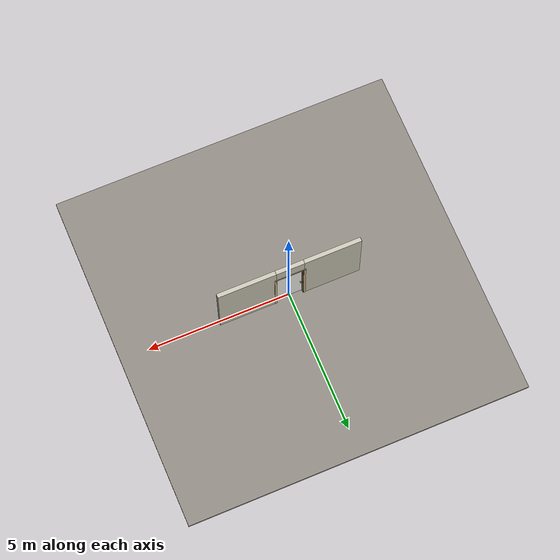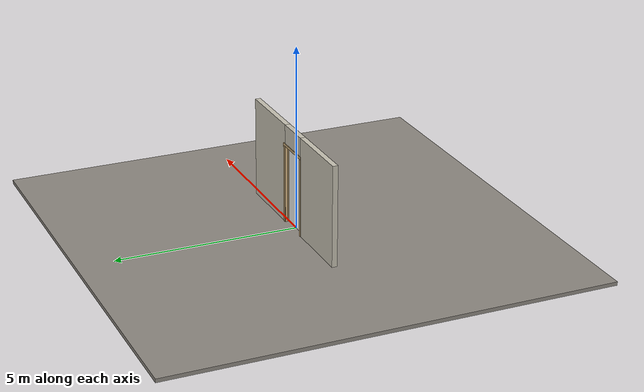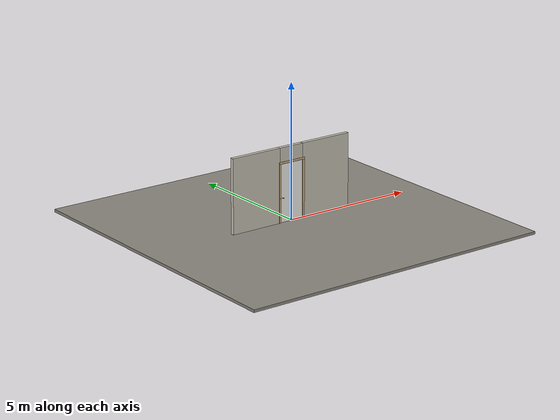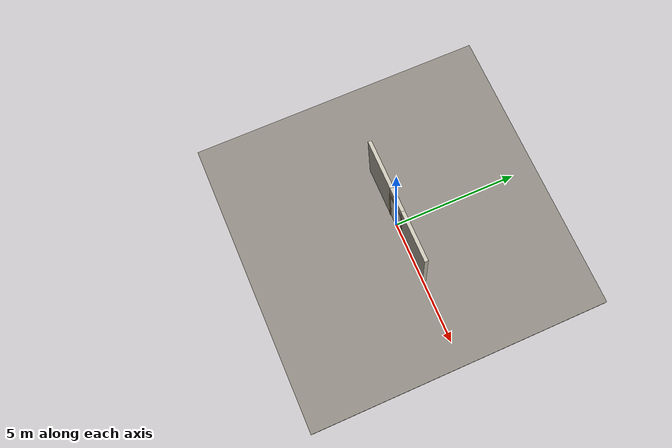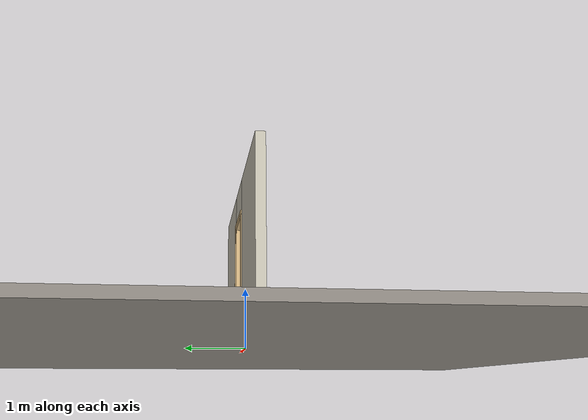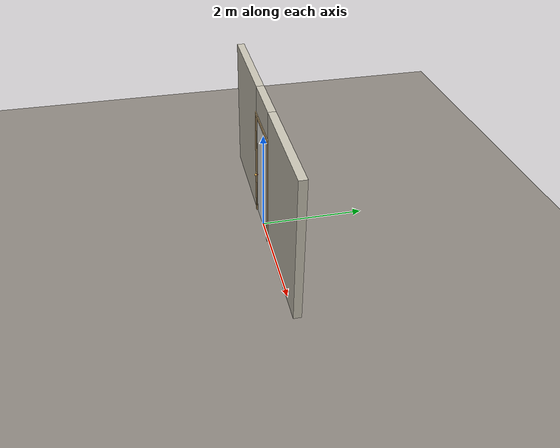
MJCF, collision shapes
<?xml version="1.0" ?>
<mujoco model="db0940_swing_single_full">
  <compiler angle="radian" meshdir="../../hardware" texturedir="../../textures" autolimits="true" inertiafromgeom="false"/>
  <option timestep="0.002" integrator="implicitfast" cone="elliptic" impratio="10" noslip_iterations="3">
    <flag multiccd="enable"/>
  </option>
  <size memory="16M"/>
  <default>
    <geom condim="4" solref="0.005 1" solimp="0.95 0.99 0.001"/>
    <joint solreflimit="0.005 1" solimplimit="0.95 0.99 0.001"/>
    <tendon solreflimit="0.005 1"/>
    <equality solref="0.002 1"/>
  </default>
  <visual>
    <headlight ambient="0.4 0.4 0.4" diffuse="0.7 0.7 0.7" specular="0.2 0.2 0.2"/>
    <quality shadowsize="4096"/>
    <map znear="0.01" zfar="60"/>
  </visual>
  <asset>
    <mesh name="hinge_e3fd49fe13" file="hinge_e3fd49fe13.obj"/>
    <mesh name="hinge_jamb_e47eb19c39" file="hinge_jamb_e47eb19c39.obj"/>
    <mesh name="knob_d1888f6f03" file="knob_d1888f6f03.obj"/>
    <material name="mat_floor" rgba="0.55 0.53 0.5 1" specular="0.2" shininess="0.15" reflectance="0"/>
    <material name="mat_wall" rgba="0.78 0.76 0.7 1" specular="0.2" shininess="0.1" reflectance="0"/>
    <material name="mat_leaf" rgba="0.93 0.93 0.91 1" specular="0.2" shininess="0.43" reflectance="0"/>
    <material name="mat_leaf_louver" rgba="0.79 0.79 0.773 1" specular="0.2" shininess="0.4" reflectance="0"/>
    <material name="mat_hinge" rgba="0.65 0.66 0.68 1" specular="0.74" shininess="0.5" reflectance="0.36"/>
    <material name="mat_op_brass" rgba="0.85 0.66 0.3 1" specular="0.8" shininess="0.75" reflectance="0.4"/>
    <material name="mat_trim" rgba="0.85 0.66 0.3 1" specular="0.8" shininess="0.75" reflectance="0.4"/>
    <material name="mat_bolt" rgba="0.85 0.66 0.3 1" specular="0.8" shininess="0.75" reflectance="0.4"/>
    <material name="mat_frame" rgba="0.82 0.7 0.5 1" specular="0.2" shininess="0.45" reflectance="0"/>
    <texture name="skybox" type="skybox" builtin="gradient" rgb1="0.6 0.7 0.85" rgb2="0.9 0.92 0.95" width="256" height="256"/>
  </asset>
  <worldbody>
    <light name="sun" pos="1.5 -2.5 4" dir="-0.3 0.5 -0.8" directional="true" diffuse="0.8 0.8 0.8" specular="0.3 0.3 0.3" castshadow="true"/>
    <light name="fill" pos="-1.5 2.5 3" dir="0.3 -0.5 -0.7" directional="true" diffuse="0.35 0.35 0.4" castshadow="false"/>
    <camera name="robot_view" pos="0 -2.589812 1.812087" xyaxes="1 0 0 0 0.26963 0.962964" fovy="52"/>
    <camera name="far_view" pos="0 2.685812 1.812087" xyaxes="-1 0 0 0 -0.26963 0.962964" fovy="52"/>
    <camera name="iso" pos="-2.004737 -2.167762 2.234138" xyaxes="0.741536 -0.670913 0 0.242917 0.268487 0.932151" fovy="46"/>
    <camera name="detail_handle" pos="-0.2165 -0.864 1.194" xyaxes="0.97561 0.219512 0 -0.070934 0.315262 0.94635" fovy="38"/>
    <geom name="floor" type="box" size="6 6 0.05" pos="0 0 -0.05" material="mat_floor" group="0" contype="1" conaffinity="1" friction="0.8 0.005 0.0001" density="2400"/>
    <geom name="wall_left" type="box" size="0.99525 0.0725 1.3735" pos="-1.50475 0.048 1.3735" material="mat_wall" group="0" contype="1" conaffinity="1" friction="0.6 0.005 0.0001" density="800"/>
    <geom name="wall_right" type="box" size="1.01025 0.0725 1.3735" pos="1.48975 0.048 1.3735" material="mat_wall" group="0" contype="1" conaffinity="1" friction="0.6 0.005 0.0001" density="800"/>
    <geom name="wall_header" type="box" size="0.4945 0.0725 0.2755" pos="-0.015 0.048 2.4715" material="mat_wall" group="0" contype="1" conaffinity="1" friction="0.6 0.005 0.0001" density="800"/>
    <geom name="hinge_0_jamb" type="mesh" mesh="hinge_jamb_e47eb19c39" pos="0.4575 -0.0245 0.259" quat="0 0 1 0" material="mat_hinge" group="1" contype="0" conaffinity="0" density="7850"/>
    <geom name="hinge_1_jamb" type="mesh" mesh="hinge_jamb_e47eb19c39" pos="0.4575 -0.0245 1.076" quat="0 0 1 0" material="mat_hinge" group="1" contype="0" conaffinity="0" density="7850"/>
    <geom name="hinge_2_jamb" type="mesh" mesh="hinge_jamb_e47eb19c39" pos="0.4575 -0.0245 1.963" quat="0 0 1 0" material="mat_hinge" group="1" contype="0" conaffinity="0" density="7850"/>
    <geom name="jamb_hinge" type="box" size="0.0095 0.0725 1.0735" pos="0.47 0.048 1.0735" material="mat_frame" group="0" contype="1" conaffinity="1" friction="0.6 0.005 0.0001" density="400"/>
    <geom name="strike_914_wall_n" type="box" size="0.0245 0.056325 0.0167" pos="-0.485 0.064175 0.914" material="mat_frame" group="0" contype="1" conaffinity="1" friction="0.6 0.005 0.0001" density="400"/>
    <geom name="strike_914_wall_p" type="box" size="0.0245 0.008 0.0167" pos="-0.485 -0.01585 0.914" material="mat_frame" group="0" contype="1" conaffinity="1" friction="0.6 0.005 0.0001" density="400"/>
    <geom name="strike_914_ramp" type="box" size="0.0245 0.01649 0.0167" pos="-0.489636 -0.028673 0.914" quat="0.977148 0 0 -0.212558" material="mat_frame" group="0" contype="1" conaffinity="1" friction="0.12 0.005 0.0001" density="400"/>
    <geom name="strike_914_back" type="box" size="0.01615 0.00785 0.0167" pos="-0.49335 0 0.914" material="mat_frame" group="0" contype="1" conaffinity="1" friction="0.6 0.005 0.0001" density="400"/>
    <geom name="jamb_strike_0" type="box" size="0.0245 0.0725 0.44865" pos="-0.485 0.048 0.44865" material="mat_frame" group="0" contype="1" conaffinity="1" friction="0.6 0.005 0.0001" density="400"/>
    <geom name="jamb_strike_1" type="box" size="0.0245 0.0725 0.60815" pos="-0.485 0.048 1.53885" material="mat_frame" group="0" contype="1" conaffinity="1" friction="0.6 0.005 0.0001" density="400"/>
    <geom name="jamb_head" type="box" size="0.4945 0.0725 0.0095" pos="-0.015 0.048 2.1565" material="mat_frame" group="0" contype="1" conaffinity="1" friction="0.6 0.005 0.0001" density="400"/>
    <geom name="head_stud" type="box" size="0.4945 0.0725 0.015" pos="-0.015 0.048 2.181" material="mat_wall" group="0" contype="1" conaffinity="1" friction="0.6 0.005 0.0001" density="500"/>
    <geom name="stop_hinge" type="box" size="0.0055 0.016 1.0735" pos="0.455 0.034 1.0735" material="mat_frame" group="0" contype="1" conaffinity="1" friction="0.6 0.005 0.0001" density="400"/>
    <geom name="stop_strike" type="box" size="0.0055 0.016 1.0735" pos="-0.455 0.034 1.0735" material="mat_frame" group="0" contype="1" conaffinity="1" friction="0.6 0.005 0.0001" density="400"/>
    <geom name="stop_head" type="box" size="0.4605 0.016 0.0055" pos="0 0.034 2.1415" material="mat_frame" group="0" contype="1" conaffinity="1" friction="0.6 0.005 0.0001" density="400"/>
    <geom name="casing_l_n" type="box" size="0.035 0.008 1.083" pos="-0.5095 -0.0325 1.0735" material="mat_frame" group="2" contype="0" conaffinity="0" density="400"/>
    <geom name="casing_r_n" type="box" size="0.035 0.008 1.083" pos="0.5095 -0.0325 1.0735" material="mat_frame" group="2" contype="0" conaffinity="0" density="400"/>
    <geom name="casing_h_n" type="box" size="0.5445 0.008 0.035" pos="0 -0.0325 2.196" material="mat_frame" group="2" contype="0" conaffinity="0" density="400"/>
    <geom name="casing_l_p" type="box" size="0.035 0.008 1.083" pos="-0.5095 0.1285 1.0735" material="mat_frame" group="2" contype="0" conaffinity="0" density="400"/>
    <geom name="casing_r_p" type="box" size="0.035 0.008 1.083" pos="0.5095 0.1285 1.0735" material="mat_frame" group="2" contype="0" conaffinity="0" density="400"/>
    <geom name="casing_h_p" type="box" size="0.5445 0.008 0.035" pos="0 0.1285 2.196" material="mat_frame" group="2" contype="0" conaffinity="0" density="400"/>
    <site name="approach_point" pos="0 -1.5 0" quat="1 0 0 0" size="0.05" rgba="0.2 0.9 0.2 0.5" group="4"/>
    <site name="goal_point" pos="0 1.5 0" quat="1 0 0 0" size="0.05" rgba="0.2 0.9 0.2 0.5" group="4"/>
    <site name="door_plane_center" pos="0 0 1.0735" quat="1 0 0 0" size="0.02" rgba="0.2 0.9 0.2 0.5" group="4"/>
    <body name="leaf" pos="0.4605 0 0">
      <inertial pos="-0.441272 -0.000694 1.076858" mass="16.233285" quat="0.500622 -0.498576 0.501402 0.499395" diaginertia="1.222823809 6.228907151 7.448032362"/>
      <joint name="leaf_hinge" type="hinge" axis="0 0 1" pos="-0.003 -0.0245 0" limited="true" range="0 1.919862" damping="0.318966" frictionloss="0.269281" armature="0.02"/>
      <geom name="leaf_slab" type="box" size="0.457 0.0175 1.067" pos="-0.46 0 1.076" material="mat_leaf" group="0" contype="1" conaffinity="1" friction="0.35 0.005 0.0001" density="1"/>
      <geom name="leaf_louver_0" type="box" size="0.35646 0.002 0.026888" pos="-0.46 0 0.269348" quat="0.953717 0.300706 0 0" material="mat_leaf_louver" group="1" contype="0" conaffinity="0" density="1"/>
      <geom name="leaf_louver_1" type="box" size="0.35646 0.002 0.026888" pos="-0.46 0 0.320564" quat="0.953717 0.300706 0 0" material="mat_leaf_louver" group="1" contype="0" conaffinity="0" density="1"/>
      <geom name="leaf_louver_2" type="box" size="0.35646 0.002 0.026888" pos="-0.46 0 0.37178" quat="0.953717 0.300706 0 0" material="mat_leaf_louver" group="1" contype="0" conaffinity="0" density="1"/>
      <geom name="leaf_louver_3" type="box" size="0.35646 0.002 0.026888" pos="-0.46 0 0.422996" quat="0.953717 0.300706 0 0" material="mat_leaf_louver" group="1" contype="0" conaffinity="0" density="1"/>
      <geom name="leaf_louver_4" type="box" size="0.35646 0.002 0.026888" pos="-0.46 0 0.474212" quat="0.953717 0.300706 0 0" material="mat_leaf_louver" group="1" contype="0" conaffinity="0" density="1"/>
      <geom name="leaf_louver_5" type="box" size="0.35646 0.002 0.026888" pos="-0.46 0 0.525428" quat="0.953717 0.300706 0 0" material="mat_leaf_louver" group="1" contype="0" conaffinity="0" density="1"/>
      <geom name="leaf_louver_6" type="box" size="0.35646 0.002 0.026888" pos="-0.46 0 0.576644" quat="0.953717 0.300706 0 0" material="mat_leaf_louver" group="1" contype="0" conaffinity="0" density="1"/>
      <geom name="leaf_louver_7" type="box" size="0.35646 0.002 0.026888" pos="-0.46 0 0.62786" quat="0.953717 0.300706 0 0" material="mat_leaf_louver" group="1" contype="0" conaffinity="0" density="1"/>
      <geom name="leaf_louver_8" type="box" size="0.35646 0.002 0.026888" pos="-0.46 0 0.679076" quat="0.953717 0.300706 0 0" material="mat_leaf_louver" group="1" contype="0" conaffinity="0" density="1"/>
      <geom name="leaf_louver_9" type="box" size="0.35646 0.002 0.026888" pos="-0.46 0 0.730292" quat="0.953717 0.300706 0 0" material="mat_leaf_louver" group="1" contype="0" conaffinity="0" density="1"/>
      <geom name="leaf_louver_10" type="box" size="0.35646 0.002 0.026888" pos="-0.46 0 0.781508" quat="0.953717 0.300706 0 0" material="mat_leaf_louver" group="1" contype="0" conaffinity="0" density="1"/>
      <geom name="leaf_louver_11" type="box" size="0.35646 0.002 0.026888" pos="-0.46 0 0.832724" quat="0.953717 0.300706 0 0" material="mat_leaf_louver" group="1" contype="0" conaffinity="0" density="1"/>
      <geom name="leaf_louver_12" type="box" size="0.35646 0.002 0.026888" pos="-0.46 0 0.88394" quat="0.953717 0.300706 0 0" material="mat_leaf_louver" group="1" contype="0" conaffinity="0" density="1"/>
      <geom name="leaf_louver_13" type="box" size="0.35646 0.002 0.026888" pos="-0.46 0 0.935156" quat="0.953717 0.300706 0 0" material="mat_leaf_louver" group="1" contype="0" conaffinity="0" density="1"/>
      <geom name="leaf_louver_14" type="box" size="0.35646 0.002 0.026888" pos="-0.46 0 0.986372" quat="0.953717 0.300706 0 0" material="mat_leaf_louver" group="1" contype="0" conaffinity="0" density="1"/>
      <geom name="leaf_louver_15" type="box" size="0.35646 0.002 0.026888" pos="-0.46 0 1.037588" quat="0.953717 0.300706 0 0" material="mat_leaf_louver" group="1" contype="0" conaffinity="0" density="1"/>
      <geom name="leaf_louver_16" type="box" size="0.35646 0.002 0.026888" pos="-0.46 0 1.088804" quat="0.953717 0.300706 0 0" material="mat_leaf_louver" group="1" contype="0" conaffinity="0" density="1"/>
      <geom name="leaf_louver_17" type="box" size="0.35646 0.002 0.026888" pos="-0.46 0 1.14002" quat="0.953717 0.300706 0 0" material="mat_leaf_louver" group="1" contype="0" conaffinity="0" density="1"/>
      <geom name="leaf_louver_18" type="box" size="0.35646 0.002 0.026888" pos="-0.46 0 1.191236" quat="0.953717 0.300706 0 0" material="mat_leaf_louver" group="1" contype="0" conaffinity="0" density="1"/>
      <geom name="leaf_louver_19" type="box" size="0.35646 0.002 0.026888" pos="-0.46 0 1.242452" quat="0.953717 0.300706 0 0" material="mat_leaf_louver" group="1" contype="0" conaffinity="0" density="1"/>
      <geom name="leaf_louver_20" type="box" size="0.35646 0.002 0.026888" pos="-0.46 0 1.293668" quat="0.953717 0.300706 0 0" material="mat_leaf_louver" group="1" contype="0" conaffinity="0" density="1"/>
      <geom name="leaf_louver_21" type="box" size="0.35646 0.002 0.026888" pos="-0.46 0 1.344884" quat="0.953717 0.300706 0 0" material="mat_leaf_louver" group="1" contype="0" conaffinity="0" density="1"/>
      <geom name="leaf_louver_22" type="box" size="0.35646 0.002 0.026888" pos="-0.46 0 1.3961" quat="0.953717 0.300706 0 0" material="mat_leaf_louver" group="1" contype="0" conaffinity="0" density="1"/>
      <geom name="leaf_louver_23" type="box" size="0.35646 0.002 0.026888" pos="-0.46 0 1.447316" quat="0.953717 0.300706 0 0" material="mat_leaf_louver" group="1" contype="0" conaffinity="0" density="1"/>
      <geom name="leaf_louver_24" type="box" size="0.35646 0.002 0.026888" pos="-0.46 0 1.498532" quat="0.953717 0.300706 0 0" material="mat_leaf_louver" group="1" contype="0" conaffinity="0" density="1"/>
      <geom name="leaf_louver_25" type="box" size="0.35646 0.002 0.026888" pos="-0.46 0 1.549748" quat="0.953717 0.300706 0 0" material="mat_leaf_louver" group="1" contype="0" conaffinity="0" density="1"/>
      <geom name="leaf_louver_26" type="box" size="0.35646 0.002 0.026888" pos="-0.46 0 1.600964" quat="0.953717 0.300706 0 0" material="mat_leaf_louver" group="1" contype="0" conaffinity="0" density="1"/>
      <geom name="leaf_louver_27" type="box" size="0.35646 0.002 0.026888" pos="-0.46 0 1.65218" quat="0.953717 0.300706 0 0" material="mat_leaf_louver" group="1" contype="0" conaffinity="0" density="1"/>
      <geom name="leaf_louver_28" type="box" size="0.35646 0.002 0.026888" pos="-0.46 0 1.703396" quat="0.953717 0.300706 0 0" material="mat_leaf_louver" group="1" contype="0" conaffinity="0" density="1"/>
      <geom name="leaf_louver_29" type="box" size="0.35646 0.002 0.026888" pos="-0.46 0 1.754612" quat="0.953717 0.300706 0 0" material="mat_leaf_louver" group="1" contype="0" conaffinity="0" density="1"/>
      <geom name="leaf_louver_30" type="box" size="0.35646 0.002 0.026888" pos="-0.46 0 1.805828" quat="0.953717 0.300706 0 0" material="mat_leaf_louver" group="1" contype="0" conaffinity="0" density="1"/>
      <geom name="leaf_louver_31" type="box" size="0.35646 0.002 0.026888" pos="-0.46 0 1.857044" quat="0.953717 0.300706 0 0" material="mat_leaf_louver" group="1" contype="0" conaffinity="0" density="1"/>
      <geom name="leaf_louver_32" type="box" size="0.35646 0.002 0.026888" pos="-0.46 0 1.90826" quat="0.953717 0.300706 0 0" material="mat_leaf_louver" group="1" contype="0" conaffinity="0" density="1"/>
      <geom name="leaf_louver_33" type="box" size="0.35646 0.002 0.026888" pos="-0.46 0 1.959476" quat="0.953717 0.300706 0 0" material="mat_leaf_louver" group="1" contype="0" conaffinity="0" density="1"/>
      <geom name="leaf_louver_34" type="box" size="0.35646 0.002 0.026888" pos="-0.46 0 2.010692" quat="0.953717 0.300706 0 0" material="mat_leaf_louver" group="1" contype="0" conaffinity="0" density="1"/>
      <geom name="hinge_0" type="mesh" mesh="hinge_e3fd49fe13" pos="-0.003 -0.0245 0.259" quat="0 0 1 0" material="mat_hinge" group="1" contype="0" conaffinity="0" density="7850"/>
      <geom name="hinge_1" type="mesh" mesh="hinge_e3fd49fe13" pos="-0.003 -0.0245 1.076" quat="0 0 1 0" material="mat_hinge" group="1" contype="0" conaffinity="0" density="7850"/>
      <geom name="hinge_2" type="mesh" mesh="hinge_e3fd49fe13" pos="-0.003 -0.0245 1.963" quat="0 0 1 0" material="mat_hinge" group="1" contype="0" conaffinity="0" density="7850"/>
      <geom name="leaf_latch_bolt_faceplate" type="box" size="0.0006 0.01235 0.0267" pos="-0.9164 0 0.914" material="mat_bolt" group="1" contype="0" conaffinity="0" density="8500"/>
      <site name="leaf_edge_mid" pos="-0.917 0 1.067" quat="1 0 0 0" size="0.02" rgba="0.2 0.9 0.2 0.5" group="4"/>
      <body name="leaf_handle" pos="-0.857 0 0.914">
        <inertial pos="0 0 0" mass="1.143961" quat="0.707107 0 0 -0.707107" diaginertia="0.00031237 0.003706292 0.003706292"/>
        <joint name="leaf_handle_hinge" type="hinge" axis="0 1 0" limited="true" range="0 0.87" damping="0.143613" frictionloss="0.038" stiffness="0.5" springref="-0.5" armature="0.01"/>
        <geom name="leaf_handle_spindle" type="cylinder" size="0.006 0.0255" pos="0 0 0" quat="0.707107 -0.707107 0 0" material="mat_op_brass" group="1" contype="0" conaffinity="0" density="7850"/>
        <geom name="leaf_handle_knob_n" type="mesh" mesh="knob_d1888f6f03" pos="0 -0.0175 0" quat="0 0 -0.707107 0.707107" material="mat_op_brass" group="1" contype="0" conaffinity="0" density="3000"/>
        <geom name="leaf_handle_knob_col_n" type="sphere" size="0.0243" pos="0 -0.064 0" material="mat_op_brass" group="0" contype="1" conaffinity="1" friction="0.9 0.01 0.0001" density="3000"/>
        <geom name="leaf_handle_knob_neck_n" type="cylinder" size="0.011 0.012" pos="0 -0.0295 0" quat="0.707107 -0.707107 0 0" material="mat_op_brass" group="3" contype="1" conaffinity="1" rgba="0.8 0.3 0.3 0.25" friction="0.6 0.005 0.0001" density="3000"/>
        <geom name="leaf_handle_knob_p" type="mesh" mesh="knob_d1888f6f03" pos="0 0.0175 0" quat="0 0 0.707107 0.707107" material="mat_op_brass" group="1" contype="0" conaffinity="0" density="3000"/>
        <geom name="leaf_handle_knob_col_p" type="sphere" size="0.0243" pos="0 0.064 0" material="mat_op_brass" group="0" contype="1" conaffinity="1" friction="0.9 0.01 0.0001" density="3000"/>
        <geom name="leaf_handle_knob_neck_p" type="cylinder" size="0.011 0.012" pos="0 0.0295 0" quat="0.707107 -0.707107 0 0" material="mat_op_brass" group="3" contype="1" conaffinity="1" rgba="0.8 0.3 0.3 0.25" friction="0.6 0.005 0.0001" density="3000"/>
        <site name="leaf_handle_grip_n" pos="0 -0.064 0" quat="1 0 0 0" size="0.012" rgba="0.2 0.9 0.2 0.5" group="4"/>
        <site name="leaf_handle_grip_p" pos="0 0.064 0" quat="1 0 0 0" size="0.012" rgba="0.2 0.9 0.2 0.5" group="4"/>
      </body>
      <body name="leaf_latch_bolt" pos="-0.917 0 0.914">
        <inertial pos="0.00865 0 0" mass="0.041419" quat="0.92388 0.382683 0 0" diaginertia="0.000000798 0.000005598 0.000005598"/>
        <joint name="leaf_latch_bolt_slide" type="slide" axis="1 0 0" limited="true" range="0 0.0127" damping="2" frictionloss="0.3" stiffness="300" springref="-0.008333" armature="0.1"/>
        <geom name="leaf_latch_bolt_capsule" type="capsule" size="0.00635 0.015" pos="0.00865 0 0" quat="0.707107 0 -0.707107 0" material="mat_bolt" group="0" contype="1" conaffinity="1" friction="0.2 0.005 0.0001" density="8500"/>
      </body>
    </body>
  </worldbody>
  <tendon>
    <fixed name="leaf_latch_bolt_coupling" limited="true" range="0 10">
      <joint joint="leaf_latch_bolt_slide" coef="1"/>
      <joint joint="leaf_handle_hinge" coef="-0.015679"/>
    </fixed>
  </tendon>
  <sensor>
    <jointpos name="leaf_hinge_pos" joint="leaf_hinge"/>
    <jointvel name="leaf_hinge_vel" joint="leaf_hinge"/>
    <jointpos name="leaf_handle_hinge_pos" joint="leaf_handle_hinge"/>
    <jointvel name="leaf_handle_hinge_vel" joint="leaf_handle_hinge"/>
    <jointpos name="leaf_latch_bolt_slide_pos" joint="leaf_latch_bolt_slide"/>
    <jointvel name="leaf_latch_bolt_slide_vel" joint="leaf_latch_bolt_slide"/>
  </sensor>
</mujoco>
